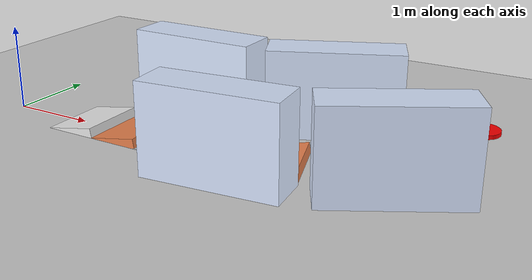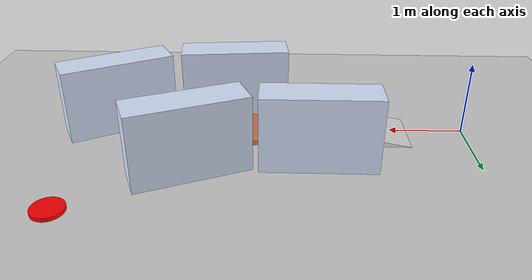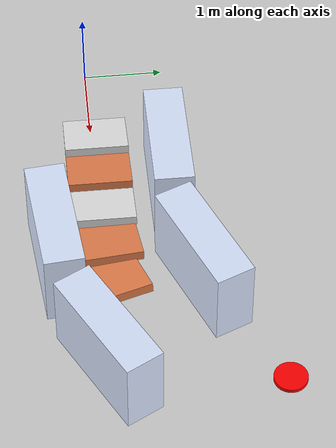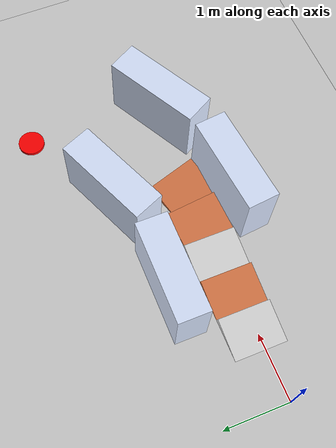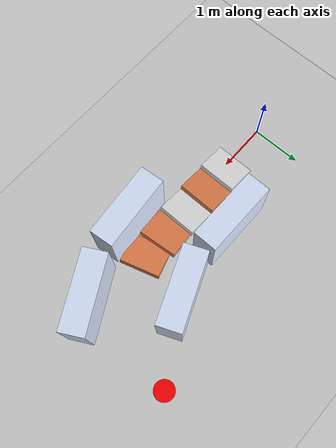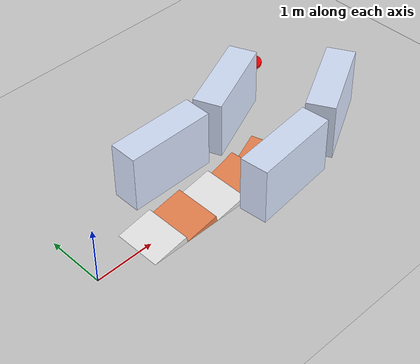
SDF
<?xml version="1.0" ?>
<sdf version="1.5">
    <world name="default">

        <physics type="ode">
        <max_step_size>0.0002</max_step_size>
        <real_time_factor>1</real_time_factor>
        <real_time_update_rate>5000</real_time_update_rate>
        <gravity>0 0 -9.81</gravity>
            <ode>
                <solver>
                <type>quick</type>
                <iters>50</iters>
                <sor>1.3</sor>
                </solver>
                <constraints>
                <cfm>0.0</cfm>
                <erp>0.2</erp>
                <contact_max_correcting_vel>10.0</contact_max_correcting_vel>
                <contact_surface_layer>0.001</contact_surface_layer>
                </constraints>
            </ode>
        </physics>

        <scene>
        <sky>
            <clouds>
                <speed>12</speed>
            </clouds>
        </sky>
        </scene>
        <!-- A global light source -->
        <include>
            <uri>model://sun</uri>
        </include>
        <!-- A ground plane -->
        <include>
          <uri>model://ground_plane</uri>

        </include>
        <!-- environment blocks, obstacles or stairs -->
        <model name="static_environment">
        <static>true</static>
            <link name="static_box">
                <pose>3.65 1.15 0.5 0 0 0.4</pose>
                <collision name="static_box_collision">
                    <geometry>
                        <box>
                            <size>1.5 0.48 1</size>
                        </box>
                    </geometry>
                </collision>
                <visual name="static_box_visual">
                    <geometry>
                        <box>
                            <size>1.5 0.48 1</size>
                        </box>
                    </geometry>
                    <material>
                        <ambient>0.55 0.65 0.8 1.0</ambient>
                        <diffuse>0.85 0.90 1.0 1.0</diffuse>
                    </material>
                </visual>
            </link>
        </model>

        <model name="static_environment1">
        <static>true</static>
            <link name="static_box">
                <pose>2.05 0.9 0.5 0 0 0</pose>
                <collision name="static_box_collision">
                    <geometry>
                        <box>
                            <size>1.5 0.48 1</size>
                        </box>
                    </geometry>
                </collision>
                <visual name="static_box_visual">
                    <geometry>
                        <box>
                            <size>1.5 0.48 1</size>
                        </box>
                    </geometry>
                    <material>
                        <ambient>0.55 0.65 0.8 1.0</ambient>
                        <diffuse>0.85 0.90 1.0 1.0</diffuse>
                    </material>
                </visual>
            </link>
        </model>

        <model name="static_environment2">
        <static>true</static>
            <link name="static_box">
                <pose>3.2 -0.55 0.5 0 0 0.1</pose>
                <collision name="static_box_collision">
                    <geometry>
                        <box>
                            <size>1.5 0.48 1</size>
                        </box>
                    </geometry>
                </collision>
                <visual name="static_box_visual">
                    <geometry>
                        <box>
                            <size>1.5 0.48 1</size>
                        </box>
                    </geometry>
                    <material>
                        <ambient>0.55 0.65 0.8 1.0</ambient>
                        <diffuse>0.85 0.90 1.0 1.0</diffuse>
                    </material>
                </visual>
            </link>
        </model>

        <model name="static_environment3">
        <static>true</static>
            <link name="static_box">
                <pose>4.8 -0.05 0.5 0 0 0.5</pose>
                <collision name="static_box_collision">
                    <geometry>
                        <box>
                            <size>1.5 0.48 1</size>
                        </box>
                    </geometry>
                </collision>
                <visual name="static_box_visual">
                    <geometry>
                        <box>
                            <size>1.5 0.48 1</size>
                        </box>
                    </geometry>
                    <material>
                        <ambient>0.55 0.65 0.8 1.0</ambient>
                        <diffuse>0.85 0.90 1.0 1.0</diffuse>
                    </material>
                </visual>
            </link>
        </model>

        <model name="red_marker1">
            <static>true</static>
            <pose>5.1 2 0.025 0 0 0</pose>
            <link name="marker_link">
                <!-- No collision tag: this visual does not participate in physical or laser collisions. -->
                <visual name="marker_visual">
                <geometry>
                    <cylinder>
                    <radius>0.2</radius>
                    <length>0.05</length>
                    </cylinder>
                </geometry>
                <material>
                    <ambient>0.8 0.1 0.1 1</ambient>
                    <diffuse>1 0 0 1</diffuse>
                </material>
                </visual>
            </link>
        </model>

        <model name="ramp0">
            <static>true</static>
            <link name="ramp_link">
                <pose>1 0.06 -0.04 0 -0.18 0</pose>
                <collision name="ramp_collision">
                    <geometry>
                        <box>
                            <size>0.8 0.8 0.15</size>
                        </box>
                    </geometry>
                    <surface>
                        <!-- Physical parameters for the sponge material, with corrected tag nesting. -->
                        <friction>
                            <ode>
                                <mu>0.3</mu>
                                <mu2>0.3</mu2>
                                <soft_cfm>0.3</soft_cfm>
                                <soft_erp>0.95</soft_erp>
                            </ode>
                        </friction>
                        <bounce>
                            <restitution_coefficient>0.01</restitution_coefficient>
                            <threshold>0.05</threshold>
                        </bounce>
                        <contact>
                            <surface_layer>0.05</surface_layer>
                        </contact>
                    </surface>
                </collision>
                <visual name="ramp_visual">
                    <geometry>
                        <box>
                            <size>0.8 0.8 0.15</size>
                        </box>
                    </geometry>
                    <material>
                        <!-- Sponge visual color. -->
                        <ambient>0.8 0.8 0.8 1.0</ambient>
                        <diffuse>0.9 0.9 0.9 1.0</diffuse>
                    </material>
                </visual>
            </link>
        </model>

        <model name="ramp1">
            <static>true</static>
            <link name="ramp_link">
                <pose>1.6 0.06 -0.04 0 -0.18 0</pose>
                <collision name="ramp_collision">
                    <geometry>
                        <box>
                            <size>0.8 0.8 0.15</size>
                        </box>
                    </geometry>
                    <surface>
                        <friction>
                            <ode>
                                <mu>1.0</mu>
                                <mu2>1.0</mu2>
                            </ode>
                        </friction>
                    </surface>
                </collision>
                <visual name="ramp_visual">
                    <geometry>
                        <box>
                            <size>0.8 0.8 0.15</size>
                        </box>
                    </geometry>
                    <material>
                        <ambient>0.8 0.4 0.2 1.0</ambient>
                        <diffuse>0.9 0.5 0.3 1.0</diffuse>
                    </material>
                </visual>
            </link>
        </model>

        <model name="ramp2">
            <static>true</static>
            <link name="ramp_link">
                <pose>2.2 0.06 -0.04 0 -0.18 0</pose>
                <collision name="ramp_collision">
                    <geometry>
                        <box>
                            <size>0.8 0.8 0.15</size>
                        </box>
                    </geometry>
                    <surface>
                        <!-- Physical parameters for the sponge material, with corrected tag nesting. -->
                        <friction>
                            <ode>
                                <mu>0.3</mu>
                                <mu2>0.3</mu2>
                                <soft_cfm>0.3</soft_cfm>
                                <soft_erp>0.95</soft_erp>
                            </ode>
                        </friction>
                        <bounce>
                            <restitution_coefficient>0.01</restitution_coefficient>
                            <threshold>0.05</threshold>
                        </bounce>
                        <contact>
                            <surface_layer>0.05</surface_layer>
                        </contact>
                    </surface>
                </collision>
                <visual name="ramp_visual">
                    <geometry>
                        <box>
                            <size>0.8 0.8 0.15</size>
                        </box>
                    </geometry>
                    <material>
                        <!-- Sponge visual color. -->
                        <ambient>0.8 0.8 0.8 1.0</ambient>
                        <diffuse>0.9 0.9 0.9 1.0</diffuse>
                    </material>
                </visual>
            </link>
        </model>

        <model name="ramp3">
            <static>true</static>
            <link name="ramp_link">
                <pose>2.8 0.06 -0.04 0 -0.18 0.1</pose>
                <collision name="ramp_collision">
                    <geometry>
                        <box>
                            <size>0.8 0.8 0.15</size>
                        </box>
                    </geometry>

                    <surface>
                        <friction>
                            <ode>
                                <mu>1.0</mu>
                                <mu2>1.0</mu2>
                            </ode>
                        </friction>
                    </surface>
                </collision>
                <visual name="ramp_visual">
                    <geometry>
                        <box>
                            <size>0.8 0.8 0.15</size>
                        </box>
                    </geometry>
                    <material>
                        <ambient>0.8 0.4 0.2 1.0</ambient>
                        <diffuse>0.9 0.5 0.3 1.0</diffuse>
                    </material>
                </visual>
            </link>
        </model>

        <model name="ramp4">
            <static>true</static>
            <link name="ramp_link">
                <pose>3.4 0.06 -0.04 0 -0.18 0.3</pose>
                <collision name="ramp_collision">
                    <geometry>
                        <box>
                            <size>0.8 0.8 0.15</size>
                        </box>
                    </geometry>
                    <surface>
                        <friction>
                            <ode>
                                <mu>1.0</mu>
                                <mu2>1.0</mu2>
                            </ode>
                        </friction>
                    </surface>
                </collision>
                <visual name="ramp_visual">
                    <geometry>
                        <box>
                            <size>0.8 0.8 0.15</size>
                        </box>
                    </geometry>
                    <material>
                        <ambient>0.8 0.4 0.2 1.0</ambient>
                        <diffuse>0.9 0.5 0.3 1.0</diffuse>
                    </material>
                </visual>
            </link>
        </model>

    </world>
</sdf>
